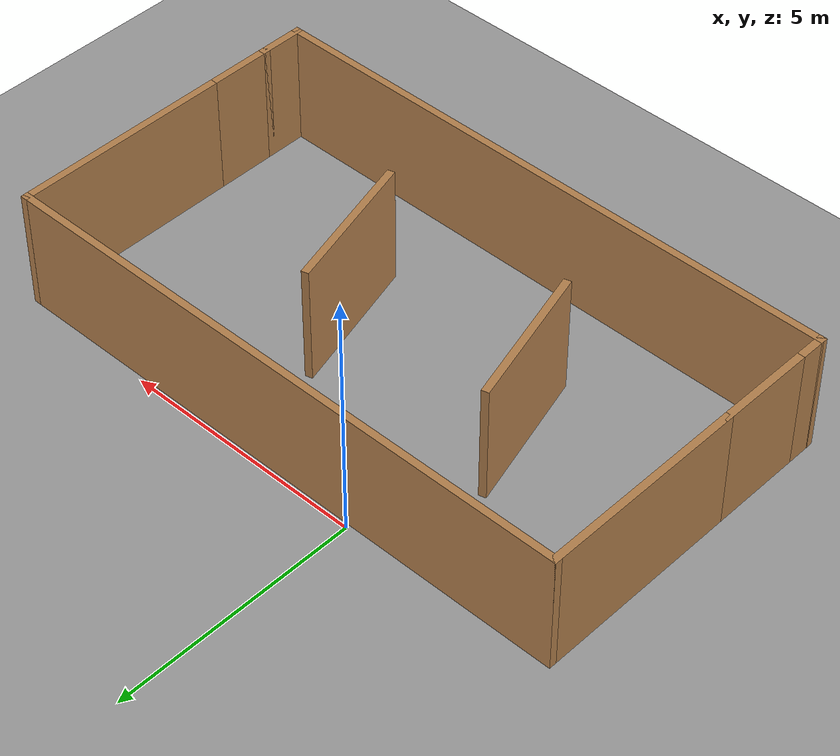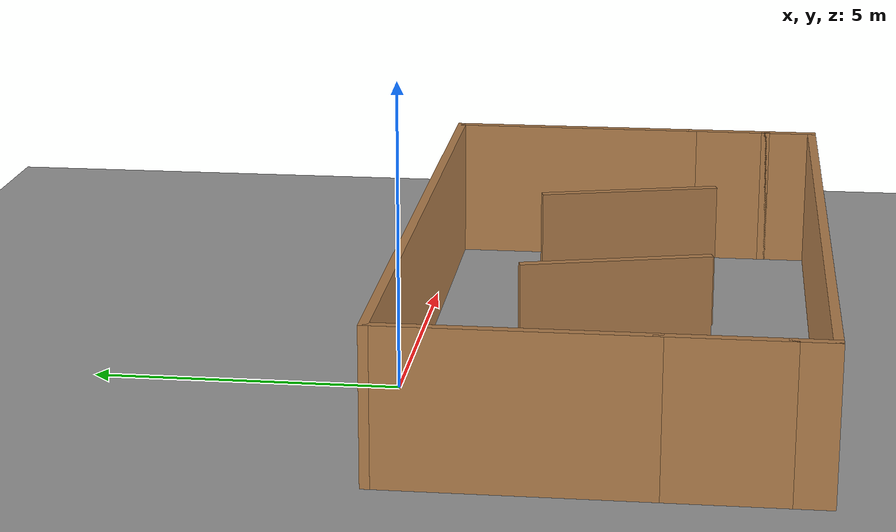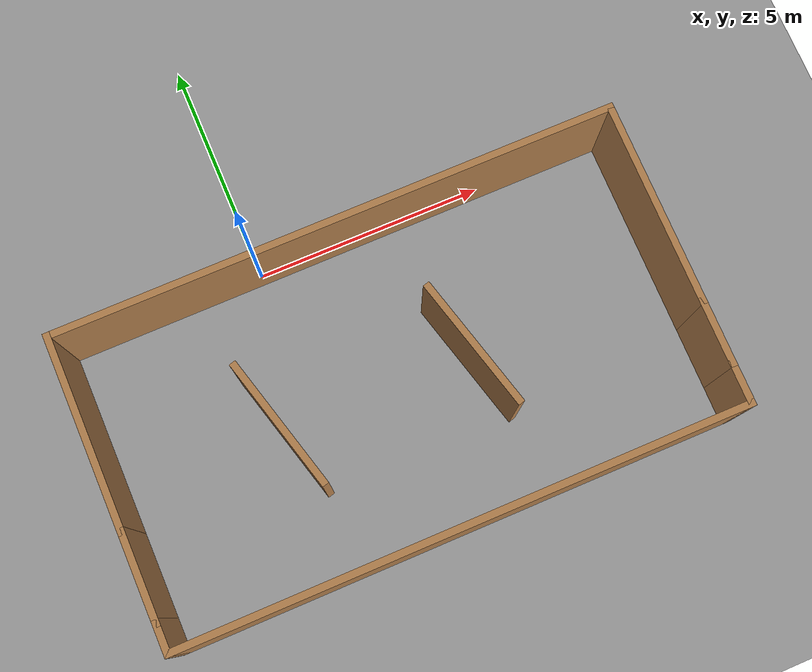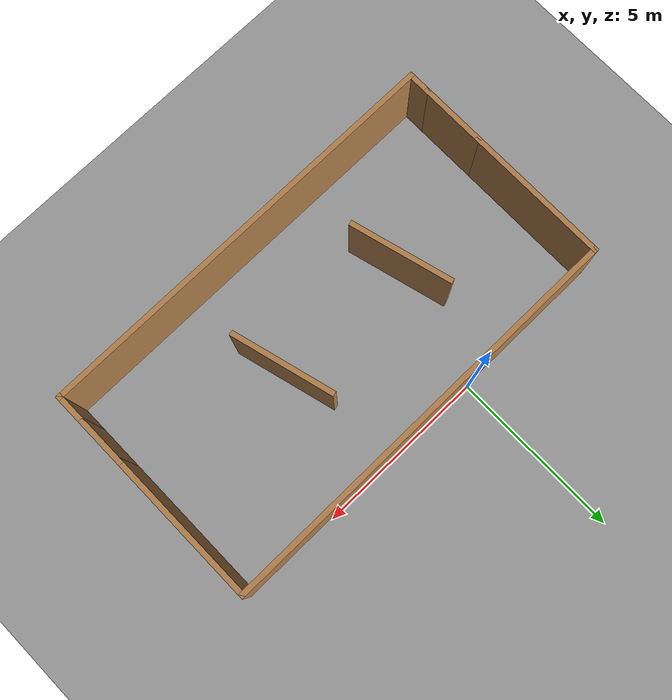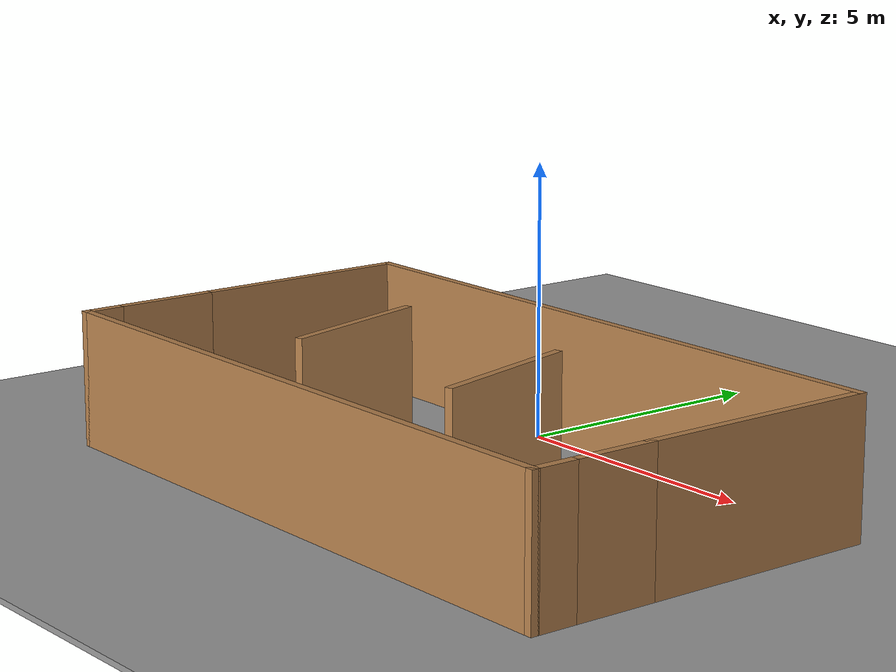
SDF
<sdf version="1.7">
 <world name="default">
  <light name="sun" type="directional">
   <pose>0 0 10 0 -0 0</pose>
   <diffuse>0.8 0.8 0.8 1</diffuse>
   <specular>0.2 0.2 0.2 1</specular>
   <attenuation>
    <range>1000</range>
    <constant>0.9</constant>
    <linear>0.01</linear>
    <quadratic>0.001</quadratic>
   </attenuation>
   <direction>-0.5 0.1 -0.9</direction>
   <spot><inner_angle>0</inner_angle><outer_angle>0</outer_angle><falloff>0</falloff></spot>
  </light>
  <model name="ground_plane">
   <static>1</static>
   <link name="link">
    <collision name="collision">
     <geometry><plane><normal>0 0 1</normal><size>100 100</size></plane></geometry>
     <surface>
      <contact><collide_bitmask>65535</collide_bitmask></contact>
      <friction><ode><mu>100</mu><mu2>50</mu2></ode></friction>
     </surface>
    </collision>
    <visual name="visual">
     <cast_shadows>0</cast_shadows>
     <geometry><plane><normal>0 0 1</normal><size>100 100</size></plane></geometry>
     <material>
      <script><uri>file://media/materials/scripts/gazebo.material</uri><name>Gazebo/Grey</name></script>
     </material>
    </visual>
   </link>
  </model>
  <gravity>0 0 -100</gravity>
  <magnetic_field>6e-06 2.3e-05 -4.2e-05</magnetic_field>
  <atmosphere type="adiabatic"/>
  <physics type="ode">
   <max_step_size>0.001</max_step_size>
   <real_time_factor>1</real_time_factor>
   <real_time_update_rate>1000</real_time_update_rate>
  </physics>
  <scene><ambient>0.4 0.4 0.4 1</ambient><background>0.7 0.7 0.7 1</background><shadows>1</shadows></scene>
  <spherical_coordinates>
   <surface_model>EARTH_WGS84</surface_model>
   <latitude_deg>0</latitude_deg>
   <longitude_deg>0</longitude_deg>
   <elevation>0</elevation>
   <heading_deg>0</heading_deg>
  </spherical_coordinates>
  <model name="ground_plane_0">
   <static>1</static>
   <link name="link">
    <collision name="collision">
     <geometry><plane><normal>0 0 1</normal><size>100 100</size></plane></geometry>
     <surface>
      <contact><collide_bitmask>65535</collide_bitmask></contact>
      <friction><ode><mu>100</mu><mu2>50</mu2></ode></friction>
     </surface>
    </collision>
    <visual name="visual">
     <cast_shadows>0</cast_shadows>
     <geometry><plane><normal>0 0 1</normal><size>100 100</size></plane></geometry>
     <material>
      <script><uri>file://media/materials/scripts/gazebo.material</uri><name>Gazebo/Grey</name></script>
     </material>
    </visual>
   </link>
   <pose>-1.83268 -9.92209 0 0 -0 0</pose>
  </model>
  <model name="3v3">
   <pose>1.73 -3.3725 0 0 -0 0</pose>
   <link name="Wall_0">
    <collision name="Wall_0_Collision">
     <geometry><box><size>4.25 0.15 2.5</size></box></geometry>
     <pose>0 0 1.25 0 -0 0</pose>
    </collision>
    <visual name="Wall_0_Visual">
     <pose>0 0 1.25 0 -0 0</pose>
     <geometry><box><size>4.25 0.15 2.5</size></box></geometry>
     <material>
      <script><uri>file://media/materials/scripts/gazebo.material</uri><name>Gazebo/Wood</name></script>
      <ambient>1 1 1 1</ambient>
     </material>
     <meta><layer>0</layer></meta>
    </visual>
    <pose>-6.05 1.2025 0 0 -0 -1.5708</pose>
   </link>
   <link name="Wall_10">
    <collision name="Wall_10_Collision">
     <geometry><box><size>0.75 0.15 2.5</size></box></geometry>
     <pose>0 0 1.25 0 -0 0</pose>
    </collision>
    <visual name="Wall_10_Visual">
     <pose>0 0 1.25 0 -0 0</pose>
     <geometry><box><size>0.75 0.15 2.5</size></box></geometry>
     <material>
      <script><uri>file://media/materials/scripts/gazebo.material</uri><name>Gazebo/Wood</name></script>
      <ambient>1 1 1 1</ambient>
     </material>
     <meta><layer>0</layer></meta>
    </visual>
    <pose>-6.05 -2.9975 0 0 -0 -1.5708</pose>
   </link>
   <link name="Wall_12">
    <collision name="Wall_12_Collision">
     <geometry><box><size>12.25 0.15 2.5</size></box></geometry>
     <pose>0 0 1.25 0 -0 0</pose>
    </collision>
    <visual name="Wall_12_Visual">
     <pose>0 0 1.25 0 -0 0</pose>
     <geometry><box><size>12.25 0.15 2.5</size></box></geometry>
     <material>
      <script><uri>file://media/materials/scripts/gazebo.material</uri><name>Gazebo/Wood</name></script>
      <ambient>1 1 1 1</ambient>
     </material>
     <meta><layer>0</layer></meta>
    </visual>
    <pose>0 -3.2975 0 0 -0 0</pose>
   </link>
   <link name="Wall_13">
    <collision name="Wall_13_Collision">
     <geometry><box><size>1 0.15 2.5</size></box></geometry>
     <pose>0 0 1.25 0 -0 0</pose>
    </collision>
    <visual name="Wall_13_Visual">
     <pose>0 0 1.25 0 -0 0</pose>
     <geometry><box><size>1 0.15 2.5</size></box></geometry>
     <material>
      <script><uri>file://media/materials/scripts/gazebo.material</uri><name>Gazebo/Wood</name></script>
      <ambient>1 1 1 1</ambient>
     </material>
     <meta><layer>0</layer></meta>
    </visual>
    <pose>6.05 -2.8725 0 0 -0 1.5708</pose>
   </link>
   <link name="Wall_16">
    <collision name="Wall_16_Collision">
     <geometry><box><size>3 0.15 2.5</size></box></geometry>
     <pose>0 0 1.25 0 -0 0</pose>
    </collision>
    <visual name="Wall_16_Visual">
     <pose>0 0 1.25 0 -0 0</pose>
     <geometry><box><size>3 0.15 2.5</size></box></geometry>
     <material>
      <script><uri>file://media/materials/scripts/gazebo.material</uri><name>Gazebo/Wood</name></script>
      <ambient>1 1 1 1</ambient>
     </material>
     <meta><layer>0</layer></meta>
    </visual>
    <pose>-2.52118 -0.093944 0 0 -0 -1.309</pose>
   </link>
   <link name="Wall_18">
    <collision name="Wall_18_Collision">
     <geometry><box><size>3 0.15 2.5</size></box></geometry>
     <pose>0 0 1.25 0 -0 0</pose>
    </collision>
    <visual name="Wall_18_Visual">
     <pose>0 0 1.25 0 -0 0</pose>
     <geometry><box><size>3 0.15 2.5</size></box></geometry>
     <material>
      <script><uri>file://media/materials/scripts/gazebo.material</uri><name>Gazebo/Wood</name></script>
      <ambient>1 1 1 1</ambient>
     </material>
     <meta><layer>0</layer></meta>
    </visual>
    <pose>1.56882 -0.113944 0 0 -0 -1.309</pose>
   </link>
   <link name="Wall_2">
    <collision name="Wall_2_Collision">
     <geometry><box><size>2 0.15 2.5</size></box></geometry>
     <pose>0 0 1.25 0 -0 0</pose>
    </collision>
    <visual name="Wall_2_Visual">
     <pose>0 0 1.25 0 -0 0</pose>
     <geometry><box><size>2 0.15 2.5</size></box></geometry>
     <material>
      <script><uri>file://media/materials/scripts/gazebo.material</uri><name>Gazebo/Wood</name></script>
      <ambient>1 1 1 1</ambient>
     </material>
     <meta><layer>0</layer></meta>
    </visual>
    <pose>-6.05 -1.7725 0 0 -0 -1.5708</pose>
   </link>
   <link name="Wall_4">
    <collision name="Wall_4_Collision">
     <geometry><box><size>12.25 0.15 2.5</size></box></geometry>
     <pose>0 0 1.25 0 -0 0</pose>
    </collision>
    <visual name="Wall_4_Visual">
     <pose>0 0 1.25 0 -0 0</pose>
     <geometry><box><size>12.25 0.15 2.5</size></box></geometry>
     <material>
      <script><uri>file://media/materials/scripts/gazebo.material</uri><name>Gazebo/Wood</name></script>
      <ambient>1 1 1 1</ambient>
     </material>
     <meta><layer>0</layer></meta>
    </visual>
    <pose>0 3.2525 0 0 -0 0</pose>
   </link>
   <link name="Wall_6">
    <collision name="Wall_6_Collision">
     <geometry><box><size>4.5 0.15 2.5</size></box></geometry>
     <pose>0 0 1.25 0 -0 0</pose>
    </collision>
    <visual name="Wall_6_Visual">
     <pose>0 0 1.25 0 -0 0</pose>
     <geometry><box><size>4.5 0.15 2.5</size></box></geometry>
     <material>
      <script><uri>file://media/materials/scripts/gazebo.material</uri><name>Gazebo/Wood</name></script>
      <ambient>1 1 1 1</ambient>
     </material>
     <meta><layer>0</layer></meta>
    </visual>
    <pose>6.05 1.0775 0 0 -0 -1.5708</pose>
   </link>
   <link name="Wall_8">
    <collision name="Wall_8_Collision">
     <geometry><box><size>1.5 0.15 2.5</size></box></geometry>
     <pose>0 0 1.25 0 -0 0</pose>
    </collision>
    <visual name="Wall_8_Visual">
     <pose>0 0 1.25 0 -0 0</pose>
     <geometry><box><size>1.5 0.15 2.5</size></box></geometry>
     <material>
      <script><uri>file://media/materials/scripts/gazebo.material</uri><name>Gazebo/Wood</name></script>
      <ambient>1 1 1 1</ambient>
     </material>
     <meta><layer>0</layer></meta>
    </visual>
    <pose>6.05 -1.7725 0 0 -0 -1.5708</pose>
   </link>
   <static>1</static>
  </model>
 </world>
</sdf>
